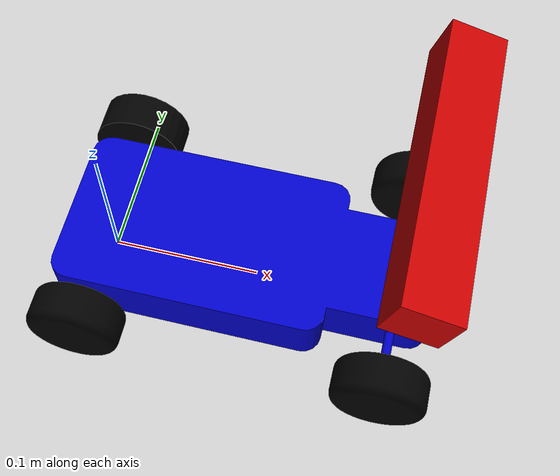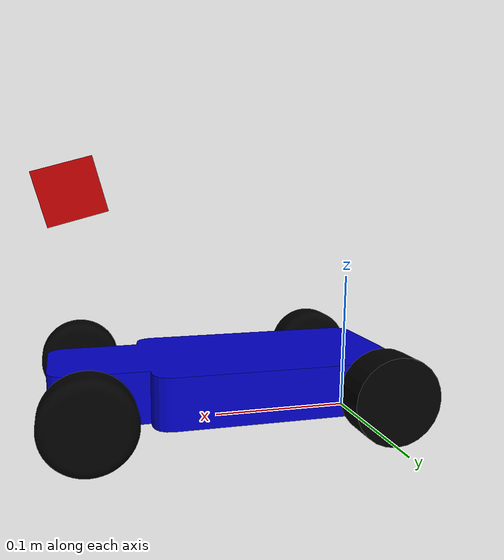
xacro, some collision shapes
<?xml version="1.0"?>
<robot name="racecar" xmlns:xacro="http://www.ros.org/wiki/xacro">

  <xacro:include filename="$(find deepracer_simulation)/urdf/macros.xacro" />

  <!-- Add chassis and it's inertia link -->

  <link name="base_link" />

  <link name="chassis">
    <visual>
      <xacro:chassis_geometry/>
      <material name="blue" />
    </visual>
  </link>

  <joint name="base_link_joint" type="fixed">
    <origin xyz="0 0 0.03" rpy="0 0 0" />
    <parent link="base_link" />
    <child link="chassis" />
  </joint>

  <link name="chassis_inertia">
    <inertial>
      <xacro:chassis_inertial_params />
    </inertial>
  </link>

  <joint name="chassis_inertia_joint" type="fixed">
    <origin xyz="0 0 0" rpy="0 0 0" />
    <parent link="chassis" />
    <child link="chassis_inertia" />
  </joint>

  <!-- Add the left rear wheel with its joints and tranmissions -->

  <link name="left_rear_wheel">
    <inertial>
      <xacro:left_wheels_inertial_params />
    </inertial>
    <visual>
      <xacro:left_rear_wheel_geometry />
      <material name="black" />
    </visual>
    <collision>robot
      <xacro:left_wheels_collision_geometry />
    </collision>
  </link>

  <joint name="left_rear_wheel_joint" type="continuous">
    <origin xyz="0 0.06 0" rpy="1.5708 0 0" />
    <parent link="chassis" />
    <child link="left_rear_wheel" />
    <axis xyz="0 0 -1" />
    <limit effort="10" velocity="100" />
  </joint>

  <xacro:wheel_transmission name="left_rear_wheel" />

  <!-- Add the right rear wheel with its joints and tranmissions -->

  <link name="right_rear_wheel">
    <inertial>
      <xacro:right_wheels_inertial_params />
    </inertial>
    <visual>
      <xacro:right_rear_wheel_geometry />
      <material name="black" />
    </visual>
    <collision>
      <xacro:right_wheels_collision_geometry />
    </collision>
  </link>

  <joint name="right_rear_wheel_joint" type="continuous">
    <origin xyz="0 -0.06 0" rpy="1.5708 0 0" />
    <parent link="chassis" />
    <child link="right_rear_wheel" />
    <axis xyz="0 0 -1" />
    <limit effort="10" velocity="100" />
  </joint>

  <xacro:wheel_transmission name="right_rear_wheel" />

  <!-- Add the left steering hinge with its joints and tranmissions -->

  <link name="left_steering_hinge">
    <inertial>
      <xacro:steering_hinge_inertial_params />
    </inertial>
    <visual>
      <xacro:left_steering_hinge_geometry />
      <material name="grey" />
    </visual>
  </link>

  <joint name="left_steering_hinge_joint" type="revolute">
    <origin xyz="0.195 0.06 0" rpy="0 1.5708 0" />
    <parent link="chassis" />
    <child link="left_steering_hinge" />
    <axis xyz="-1 0 0" />
    <limit lower="-1.0" upper="1.0" effort="10" velocity="100" />
  </joint>

  <xacro:steering_hinge_transmission name="left_steering_hinge" />

  <!-- Add the right steering hinge with its joints and tranmissions -->

  <link name="right_steering_hinge">
    <inertial>
      <xacro:steering_hinge_inertial_params />
    </inertial>
    <visual>
      <xacro:right_steering_hinge_geometry />
      <material name="grey" />
    </visual>
  </link>

  <joint name="right_steering_hinge_joint" type="continuous">
    <origin xyz="0.195 -0.06 0" rpy="0 1.5708 0" />
    <parent link="chassis" />
    <child link="right_steering_hinge" />
    <axis xyz="-1 0 0" />
    <limit lower="-1.0" upper="1.0" effort="10" velocity="100" />
  </joint>

  <xacro:steering_hinge_transmission name="right_steering_hinge" />

  <!-- Add the left front wheel with its joints and tranmissions -->

  <link name="left_front_wheel">
    <inertial>
      <xacro:left_wheels_inertial_params />
    </inertial>
    <visual>
      <xacro:left_front_wheel_geometry />
      <material name="black" />
    </visual>
    <collision>
      <xacro:left_wheels_collision_geometry />
    </collision>
  </link>

  <joint name="left_front_wheel_joint" type="continuous">
    <origin xyz="0 0 0" rpy="1.5708 0 0" />
    <parent link="left_steering_hinge" />
    <child link="left_front_wheel" />
    <axis xyz="0 0 -1" />
    <limit effort="10" velocity="100" />
  </joint>

  <xacro:wheel_transmission name="left_front_wheel" />

  <!-- Add the left front wheel with its joints and tranmissions -->

  <link name="right_front_wheel">
    <inertial>
      <xacro:right_wheels_inertial_params />
    </inertial>
    <visual>
      <xacro:right_front_wheel_geometry />
      <material name="black" />
    </visual>
    <collision>
      <xacro:right_wheels_collision_geometry />
    </collision>
  </link>

  <joint name="right_front_wheel_joint" type="continuous">
    <origin xyz="0 0 0" rpy="1.5708 0 0" />
    <parent link="right_steering_hinge" />
    <child link="right_front_wheel" />
    <axis xyz="0 0 -1" />
    <limit effort="10" velocity="100"/>
  </joint>

  <xacro:wheel_transmission name="right_front_wheel" />

  <!-- zed camera -->
  <link name="zed_camera_link">
    <inertial>
      <mass value="1e-3" />
      <origin xyz="0 0 0" rpy="0 0 0"/>
      <inertia ixx="1e-6" ixy="0" ixz="0" iyy="1e-6" iyz="0" izz="1e-6" />
    </inertial>
    <collision>
      <origin xyz="0 0 0" rpy="0 0 0"/>
      <geometry>
        <box size="0.033 0.175 0.030"/>
      </geometry>
    </collision>
    <visual>
      <origin xyz="0 0 0" rpy="0 0 0"/>
      <geometry>
        <box size="0.033 0.175 0.030"/>
      </geometry>
      <material name="red"/>
    </visual>
  </link>

  <joint name="zed_camera_joint" type="fixed">
    <origin xyz="0.20 0 0.134" rpy="0 0.261799 0"/>
    <parent link="chassis"/>
    <child link="zed_camera_link"/>
    <axis xyz="0 0 1" />
  </joint>

  <!-- zed camera lenses -->
  <!-- It seems these have to have a non-zero mass to have a camera attached? -->
  <link name="camera_link"><!-- this needs to match the name in zed_wrapper/zed_tf.launch -->
    <inertial>
      <mass value="1e-3" />
      <origin xyz="0 0 0" rpy="0 0 0"/>
      <inertia ixx="1e-6" ixy="0" ixz="0" iyy="1e-6" iyz="0" izz="1e-6" />
    </inertial>
  </link>
  <link name="zed_camera_right_link">
    <inertial>
      <mass value="1e-3" />
      <origin xyz="0 0.005 0" rpy="0 0 0"/>
      <inertia ixx="1e-6" ixy="0" ixz="0" iyy="1e-6" iyz="0" izz="1e-6" />
    </inertial>
  </link>

  <joint name="zed_camera_left_joint" type="fixed">
    <origin xyz="0 0 0" rpy="0 0 0"/>
    <parent link="zed_camera_link"/>
    <child link="camera_link"/>
    <axis xyz="0 0 1" />
  </joint>
  <joint name="zed_camera_right_joint" type="fixed">
    <origin xyz="0 -0 0" rpy="0 0 0"/>
    <parent link="zed_camera_link"/>
    <child link="zed_camera_right_link"/>
    <axis xyz="0 0 1" />
  </joint>

  <!-- Add the remaining xacros -->

  <xacro:include filename="$(find deepracer_simulation)/urdf/racecar.gazebo" />
  <xacro:include filename="$(find deepracer_simulation)/urdf/materials.xacro" />

</robot>

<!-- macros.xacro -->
<robot name="racecar" xmlns:xacro="http://www.ros.org/wiki/xacro">

<!-- inertial parameter macros -->

<xacro:macro name="chassis_inertial_params">
  <origin xyz="0.1477 0 0" rpy="0 0 0" />
  <mass value="5.0" />
  <inertia ixx="0.010609" ixy="0"          ixz="0"
                          iyy="0.050409"   iyz="0"
                                           izz="0.05865" />
</xacro:macro>

<xacro:macro name="left_wheels_inertial_params">
  <origin xyz="0 0 -0.0125" rpy="0 0 0" />
  <mass value="0.34055" />
  <inertia ixx="0.00026046" ixy="0"          ixz="0"
                            iyy="0.00026046" iyz="0"
                                             izz="0.00041226" />
</xacro:macro>

<xacro:macro name="right_wheels_inertial_params">
  <origin xyz="0 0 0.0125" rpy="0 0 0" />
  <mass value="0.34055" />
  <inertia ixx="0.00026046" ixy="0"          ixz="0"
                            iyy="0.00026046" iyz="0"
                                             izz="0.00041226" />
</xacro:macro>

<xacro:macro name="steering_hinge_inertial_params">
  <origin xyz="0 0 0" rpy="0 0 0" />
  <mass value="0.100" />
  <inertia ixx="4E-06" ixy="0"           ixz="0"
                            iyy="4E-06"  iyz="0"
                                              izz="4E-06" />
</xacro:macro>

<!-- geometry macros -->

<xacro:macro name="chassis_geometry">
  <origin xyz="0 0 0" rpy="0 0 0" />
  <geometry>
      <mesh scale="0.6 0.6 0.6" filename="package://deepracer_simulation/meshes/chassis.STL"/>
  </geometry>
</xacro:macro>

<xacro:macro name="left_rear_wheel_geometry">
  <origin xyz="0 0 0" rpy="0 0 0" />
  <geometry>
    <mesh scale="0.6 0.6 0.6" filename="package://deepracer_simulation/meshes/left_rear_wheel.STL" />
  </geometry>
</xacro:macro>

<xacro:macro name="right_rear_wheel_geometry">
  <origin xyz="0 0 0" rpy="0 0 0" />
  <geometry>
    <mesh scale="0.6 0.6 0.6" filename="package://deepracer_simulation/meshes/right_rear_wheel.STL" />
  </geometry>
</xacro:macro>

<xacro:macro name="left_front_wheel_geometry">
  <origin xyz="0 0 0" rpy="0 0 0" />
  <geometry>
    <mesh scale="0.6 0.6 0.6" filename="package://deepracer_simulation/meshes/left_front_wheel.STL" />
  </geometry>
</xacro:macro>

<xacro:macro name="right_front_wheel_geometry">
  <origin xyz="0 0 0" rpy="0 0 0" />
  <geometry>
    <mesh scale="0.6 0.6 0.6" filename="package://deepracer_simulation/meshes/right_front_wheel.STL" />
  </geometry>
</xacro:macro>

<xacro:macro name="left_steering_hinge_geometry">
  <origin xyz="0 0 0" rpy="0 0 0" />
  <geometry>
    <mesh scale="0.6 0.6 0.6" filename="package://deepracer_simulation/meshes/left_steering_hinge.STL" />
  </geometry>
</xacro:macro>

<xacro:macro name="right_steering_hinge_geometry">
  <origin xyz="0 0 0" rpy="0 0 0" />
  <geometry>
    <mesh scale="0.6 0.6 0.6" filename="package://deepracer_simulation/meshes/right_steering_hinge.STL" />
  </geometry>
</xacro:macro>

<xacro:macro name="left_wheels_collision_geometry">
  <origin xyz="0 0 -0.0125" rpy="0 0 0" />
  <geometry>
    <cylinder length="0.025" radius="0.03" />
  </geometry>
</xacro:macro>

<xacro:macro name="right_wheels_collision_geometry">
  <origin xyz="0 0 0.0125" rpy="0 0 0" />
  <geometry>
    <cylinder length="0.025" radius="0.03" />
  </geometry>
</xacro:macro>

<!-- transmission macros -->

<xacro:macro name="wheel_transmission" params="name">
  <transmission name="${name}_transmission" type="SimpleTransmission">
    <type>transmission_interface/SimpleTransmission</type>
    <joint name="${name}_joint">
      <hardwareInterface>hardware_interface/EffortJointInterface</hardwareInterface>
    </joint>
    <actuator name="${name}_motor">
      <hardwareInterface>hardware_interface/EffortJointInterface</hardwareInterface>
      <mechanicalReduction>1</mechanicalReduction>
    </actuator>
  </transmission>
</xacro:macro>

<xacro:macro name="steering_hinge_transmission" params="name">
  <transmission name="${name}_transmission" type="SimpleTransmission">
    <type>transmission_interface/SimpleTransmission</type>
    <joint name="${name}_joint">
      <hardwareInterface>hardware_interface/EffortJointInterface</hardwareInterface>
    </joint>
    <actuator name="${name}_motor">
      <hardwareInterface>hardware_interface/EffortJointInterface</hardwareInterface>
      <mechanicalReduction>1</mechanicalReduction>
    </actuator>
  </transmission>
</xacro:macro>

</robot>

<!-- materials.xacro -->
<robot name="racecar" xmlns:xacro="http://www.ros.org/wiki/xacro">

<material name="black">
  <color rgba="0.0 0.0 0.0 1.0"/>
</material>

<material name="blue">
  <color rgba="0.0 0.0 0.8 1.0"/>
</material>

<material name="green">
  <color rgba="0.0 0.8 0.0 1.0"/>
</material>

<material name="grey">
  <color rgba="0.2 0.2 0.2 1.0"/>
</material>

<material name="orange">
  <color rgba="${255/255} ${108/255} ${10/255} 1.0"/>
</material>

<material name="brown">
  <color rgba="${222/255} ${207/255} ${195/255} 1.0"/>
</material>

<material name="red">
  <color rgba="0.8 0.0 0.0 1.0"/>
</material>

<material name="white">
  <color rgba="1.0 1.0 1.0 1.0"/>
</material>

</robot>
